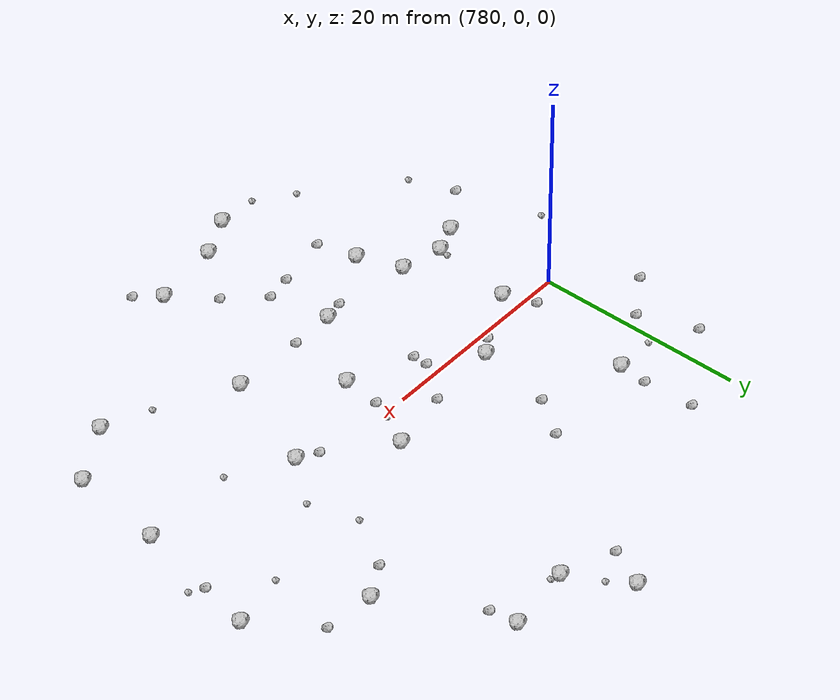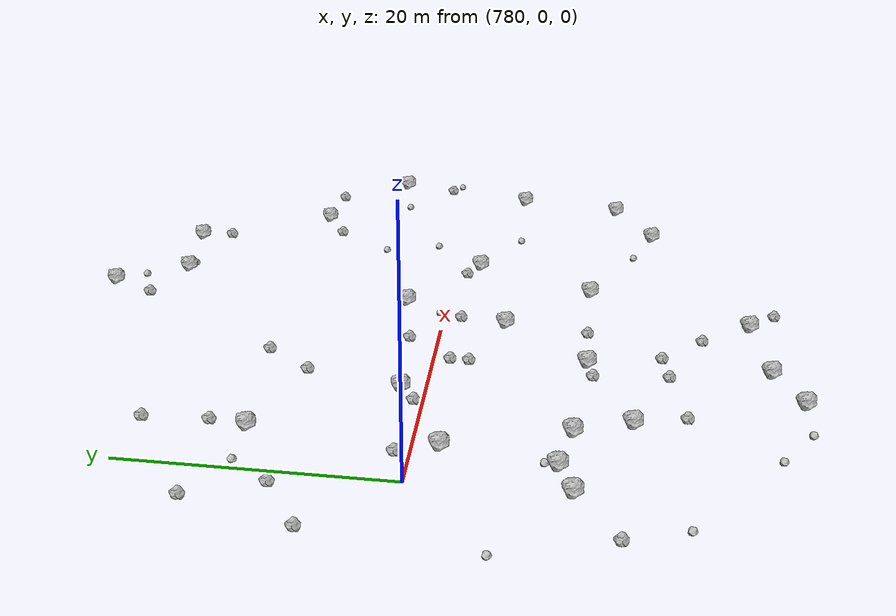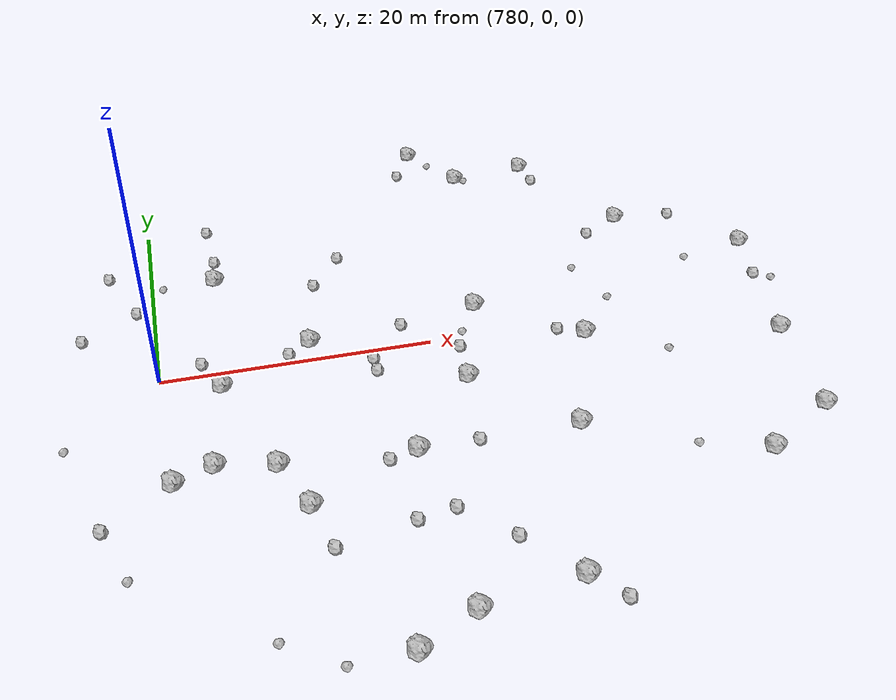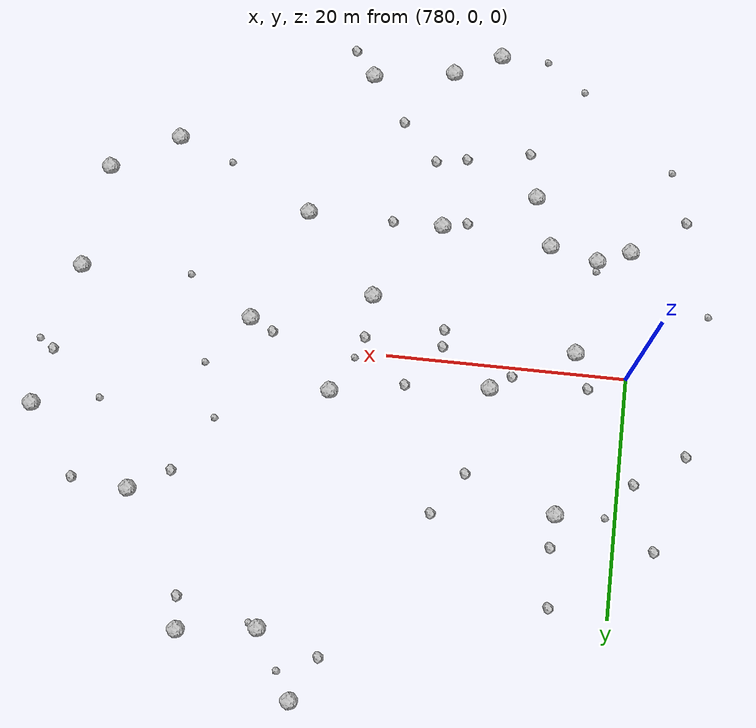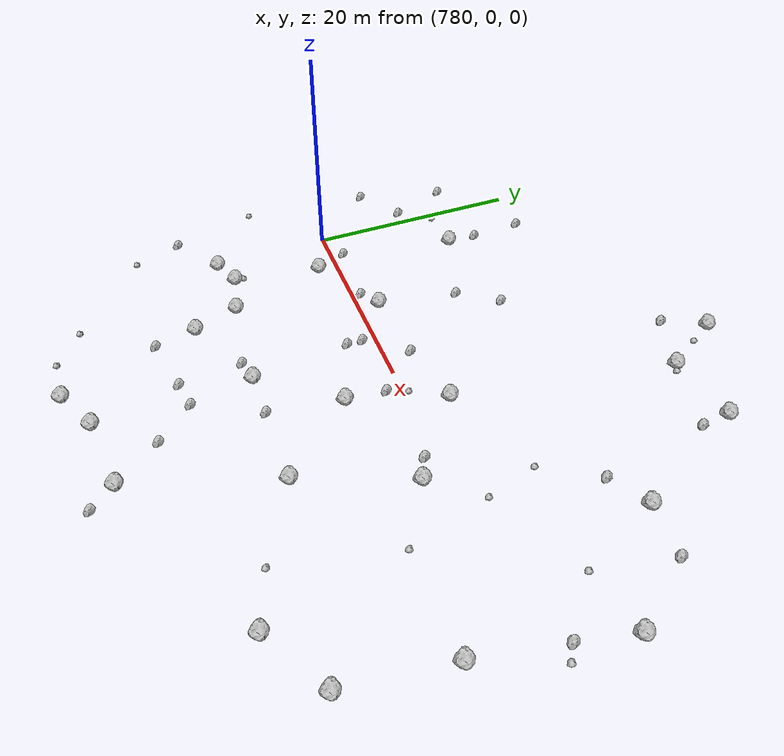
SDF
<sdf version="1.6">
 <world name="default">
  <include><uri>model://sun</uri></include>
  <model name="rock1_20_4">
   <include><uri>model://rock1</uri><pose>819.9840964896628 13.372470265526282 0.5 0 0 0</pose></include>
  </model>
  <model name="rock1_20_5">
   <include><uri>model://rock1</uri><pose>784.9511448097267 11.884318958203217 0.5 0 0 0</pose></include>
  </model>
  <model name="rock1_20_6">
   <include><uri>model://rock1</uri><pose>811.6407391570488 -2.011990795354187 0.5 0 0 0</pose></include>
  </model>
  <model name="rock1_20_7">
   <include><uri>model://rock1</uri><pose>826.2941722866998 -5.064724689868136 0.5 0 0 0</pose></include>
  </model>
  <model name="rock1_20_8">
   <include><uri>model://rock1</uri><pose>783.1556315484111 -9.917795947127154 0.5 0 0 0</pose></include>
  </model>
  <model name="rock1_20_9">
   <include><uri>model://rock1</uri><pose>788.710507410633 -14.98026946349915 0.5 0 0 0</pose></include>
  </model>
  <model name="rock1_20_10">
   <include><uri>model://rock1</uri><pose>828.8483401198271 7.11516461337655 0.5 0 0 0</pose></include>
  </model>
  <model name="rock1_20_11">
   <include><uri>model://rock1</uri><pose>792.7595550982328 -27.360434985907403 0.5 0 0 0</pose></include>
  </model>
  <model name="rock1_20_12">
   <include><uri>model://rock1</uri><pose>819.4812563254939 -17.199947121714715 0.5 0 0 0</pose></include>
  </model>
  <model name="rock1_20_13">
   <include><uri>model://rock1</uri><pose>801.6452142508824 -4.973654068510157 0.5 0 0 0</pose></include>
  </model>
  <model name="rock1_20_14">
   <include><uri>model://rock1</uri><pose>814.5856554234032 24.362381627665414 0.5 0 0 0</pose></include>
  </model>
  <model name="rock1_20_15">
   <include><uri>model://rock1</uri><pose>825.0644288097491 -13.957510178888484 0.5 0 0 0</pose></include>
  </model>
  <model name="rock1_20_16">
   <include><uri>model://rock1</uri><pose>784.350637398638 -1.8085454614188947 0.5 0 0 0</pose></include>
  </model>
  <model name="rock1_20_17">
   <include><uri>model://rock1</uri><pose>807.8112290045963 -11.692838550424614 0.5 0 0 0</pose></include>
  </model>
  <model name="rock1_20_18">
   <include><uri>model://rock1</uri><pose>808.0742618843956 23.577219075761477 0.5 0 0 0</pose></include>
  </model>
  <model name="rock1_20_19">
   <include><uri>model://rock1</uri><pose>780.4217257926808 -10.984792324089089 0.5 0 0 0</pose></include>
  </model>
  <model name="rock1_20_20">
   <include><uri>model://rock1</uri><pose>803.5701043013437 -24.483012606986076 0.5 0 0 0</pose></include>
  </model>
  <model name="rock1_20_21">
   <include><uri>model://rock1</uri><pose>787.1877048488853 -10.80871920747936 0.5 0 0 0</pose></include>
  </model>
  <model name="rock1_20_22">
   <include><uri>model://rock1</uri><pose>804.4177214629741 3.4866971609210466 0.5 0 0 0</pose></include>
  </model>
  <model name="rock1_20_23">
   <include><uri>model://rock1</uri><pose>796.423717867425 -11.629128939161678 0.5 0 0 0</pose></include>
  </model>
  <model name="rock1_20_24">
   <include><uri>model://rock1</uri><pose>791.2105617723915 1.9308992905090996 0.5 0 0 0</pose></include>
  </model>
  <model name="rock1_20_25">
   <include><uri>model://rock1</uri><pose>796.7220181003441 -25.41611109099115 0.5 0 0 0</pose></include>
  </model>
  <model name="rock1_20_26">
   <include><uri>model://rock1</uri><pose>804.8618415399687 29.056421314401447 0.5 0 0 0</pose></include>
  </model>
  <model name="rock2_20_0">
   <include><uri>model://rock2</uri><pose>778.716602263634 8.763648317251729 0.3 0 0 0</pose></include>
  </model>
  <model name="rock2_20_1">
   <include><uri>model://rock2</uri><pose>794.3264631629804 -12.078356628720218 0.3 0 0 0</pose></include>
  </model>
  <model name="rock2_20_2">
   <include><uri>model://rock2</uri><pose>795.4056498361056 -1.2102034658124055 0.3 0 0 0</pose></include>
  </model>
  <model name="rock2_20_3">
   <include><uri>model://rock2</uri><pose>795.0782714384034 12.841882712034753 0.3 0 0 0</pose></include>
  </model>
  <model name="rock2_20_4">
   <include><uri>model://rock2</uri><pose>814.8530858066515 21.681706472671564 0.3 0 0 0</pose></include>
  </model>
  <model name="rock2_20_5">
   <include><uri>model://rock2</uri><pose>800.6074106720715 -11.605546319734486 0.3 0 0 0</pose></include>
  </model>
  <model name="rock2_20_6">
   <include><uri>model://rock2</uri><pose>794.880665404725 -17.7651514693392 0.3 0 0 0</pose></include>
  </model>
  <model name="rock2_20_7">
   <include><uri>model://rock2</uri><pose>805.3003866045765 -26.616367526800644 0.3 0 0 0</pose></include>
  </model>
  <model name="rock2_20_8">
   <include><uri>model://rock2</uri><pose>816.6277002785954 11.497597963967578 0.3 0 0 0</pose></include>
  </model>
  <model name="rock2_20_9">
   <include><uri>model://rock2</uri><pose>801.934283454677 -1.351135277551471 0.3 0 0 0</pose></include>
  </model>
  <model name="rock2_20_10">
   <include><uri>model://rock2</uri><pose>776.6829537407343 14.121209004123791 0.3 0 0 0</pose></include>
  </model>
  <model name="rock2_20_11">
   <include><uri>model://rock2</uri><pose>824.713047129379 12.890450908489171 0.3 0 0 0</pose></include>
  </model>
  <model name="rock2_20_12">
   <include><uri>model://rock2</uri><pose>797.4949509703453 -17.310669508598252 0.3 0 0 0</pose></include>
  </model>
  <model name="rock2_20_13">
   <include><uri>model://rock2</uri><pose>802.9140952289836 25.38847550204145 0.3 0 0 0</pose></include>
  </model>
  <model name="rock2_20_14">
   <include><uri>model://rock2</uri><pose>798.2286953207865 2.3559182542054558 0.3 0 0 0</pose></include>
  </model>
  <model name="rock2_20_15">
   <include><uri>model://rock2</uri><pose>789.4358903192818 0.7458547351795701 0.3 0 0 0</pose></include>
  </model>
  <model name="rock2_20_16">
   <include><uri>model://rock2</uri><pose>827.7001350621306 2.3315472376128454 0.3 0 0 0</pose></include>
  </model>
  <model name="rock2_20_17">
   <include><uri>model://rock2</uri><pose>792.5555241810229 9.274192245397742 0.3 0 0 0</pose></include>
  </model>
  <model name="rock2_20_18">
   <include><uri>model://rock2</uri><pose>785.1091896597765 14.636111499258426 0.3 0 0 0</pose></include>
  </model>
  <model name="rock2_20_19">
   <include><uri>model://rock2</uri><pose>775.8818717632023 -14.056442834674774 0.3 0 0 0</pose></include>
  </model>
  <model name="rock2_20_20">
   <include><uri>model://rock2</uri><pose>784.8606916939442 19.527713301170735 0.3 0 0 0</pose></include>
  </model>
  <model name="rock2_20_21">
   <include><uri>model://rock2</uri><pose>789.5466456069915 -18.794164484675008 0.3 0 0 0</pose></include>
  </model>
  <model name="rock2_20_22">
   <include><uri>model://rock2</uri><pose>809.6686023626514 -1.032976156726729 0.3 0 0 0</pose></include>
  </model>
  <model name="rock2_20_23">
   <include><uri>model://rock2</uri><pose>795.3933379119006 -2.652855381685942 0.3 0 0 0</pose></include>
  </model>
  <model name="rock2_20_24">
   <include><uri>model://rock2</uri><pose>783.0900601283022 1.1368062904804574 0.3 0 0 0</pose></include>
  </model>
  <model name="rock2_20_25">
   <include><uri>model://rock2</uri><pose>800.551280816575 -20.546495126306468 0.3 0 0 0</pose></include>
  </model>
  <model name="rock2_20_26">
   <include><uri>model://rock2</uri><pose>774.5993018460952 6.007743188007751 0.3 0 0 0</pose></include>
  </model>
  <model name="rock3_20_0">
   <include><uri>model://rock3</uri><pose>813.5908390759046 6.733260165090712 0.2 0 0 0</pose></include>
  </model>
  <model name="rock3_20_1">
   <include><uri>model://rock3</uri><pose>828.894758170592 1.4941445863236815 0.2 0 0 0</pose></include>
  </model>
  <model name="rock3_20_2">
   <include><uri>model://rock3</uri><pose>780.817931241846 11.71269560852594 0.2 0 0 0</pose></include>
  </model>
  <model name="rock3_20_3">
   <include><uri>model://rock3</uri><pose>773.5030445952582 -6.087224977202808 0.2 0 0 0</pose></include>
  </model>
  <model name="rock3_20_4">
   <include><uri>model://rock3</uri><pose>785.3413216715358 -24.936191771175757 0.2 0 0 0</pose></include>
  </model>
  <model name="rock3_20_5">
   <include><uri>model://rock3</uri><pose>788.7111647552476 -27.348866493565463 0.2 0 0 0</pose></include>
  </model>
  <model name="rock3_20_6">
   <include><uri>model://rock3</uri><pose>802.5807273878993 0.44041286449307293 0.2 0 0 0</pose></include>
  </model>
  <model name="rock3_20_7">
   <include><uri>model://rock3</uri><pose>777.3638529078138 -18.43783550487436 0.2 0 0 0</pose></include>
  </model>
  <model name="rock3_20_8">
   <include><uri>model://rock3</uri><pose>823.2844320899261 6.034709055112856 0.2 0 0 0</pose></include>
  </model>
  <model name="rock3_20_9">
   <include><uri>model://rock3</uri><pose>808.7761747027083 23.18905160825654 0.2 0 0 0</pose></include>
  </model>
  <model name="rock3_20_10">
   <include><uri>model://rock3</uri><pose>806.126209996502 26.766791150877545 0.2 0 0 0</pose></include>
  </model>
  <model name="rock3_20_11">
   <include><uri>model://rock3</uri><pose>814.7641662478547 -15.49680328801583 0.2 0 0 0</pose></include>
  </model>
  <model name="rock3_20_12">
   <include><uri>model://rock3</uri><pose>814.9444426748607 2.1141724662863552 0.2 0 0 0</pose></include>
  </model>
  <model name="rock3_20_13">
   <include><uri>model://rock3</uri><pose>783.1379575370232 -9.080295730723208 0.2 0 0 0</pose></include>
  </model>
  <model name="rock3_20_14">
   <include><uri>model://rock3</uri><pose>817.0276867666432 -5.303936295502599 0.2 0 0 0</pose></include>
  </model>
 </world>
</sdf>
